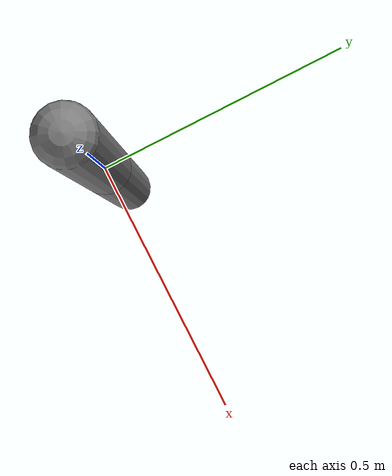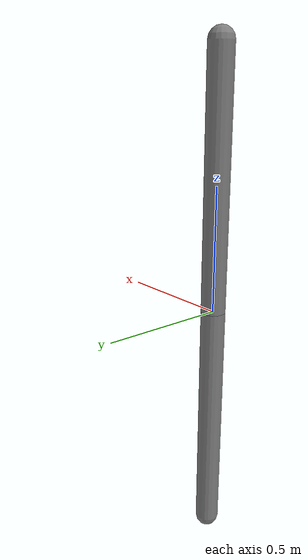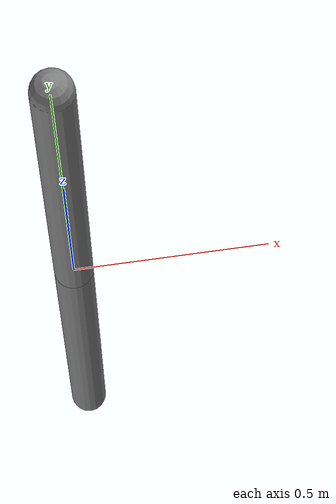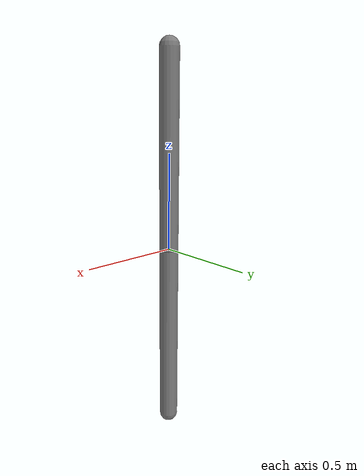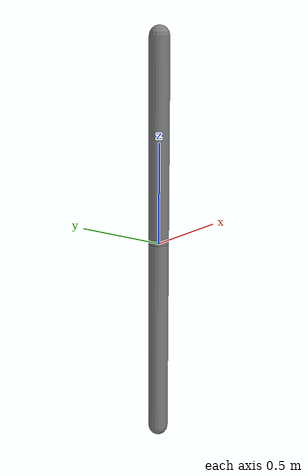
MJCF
<mujoco model="acrobot">

  <option gravity="0 0 -9.81" timestep="0.005"/>

  <default>
    <joint damping="0"/>
  </default>

  <worldbody>
    <body pos="0 0 1">

      <joint name="theta1" type="hinge" axis="0 1 0"/>

      <body pos="0 0 0">
        <geom type="capsule" fromto="0 0 0 0 0 -1" size="0.05"/>

        <body pos="0 0 -1">
          <joint name="theta2" type="hinge" axis="0 1 0"/>
          <geom type="capsule" fromto="0 0 0 0 0 -1" size="0.05"/>
        </body>

      </body>
    </body>
  </worldbody>

  <actuator>
    <motor joint="theta1" ctrlrange="-1 1" gear="200"/>
  </actuator>

</mujoco>
